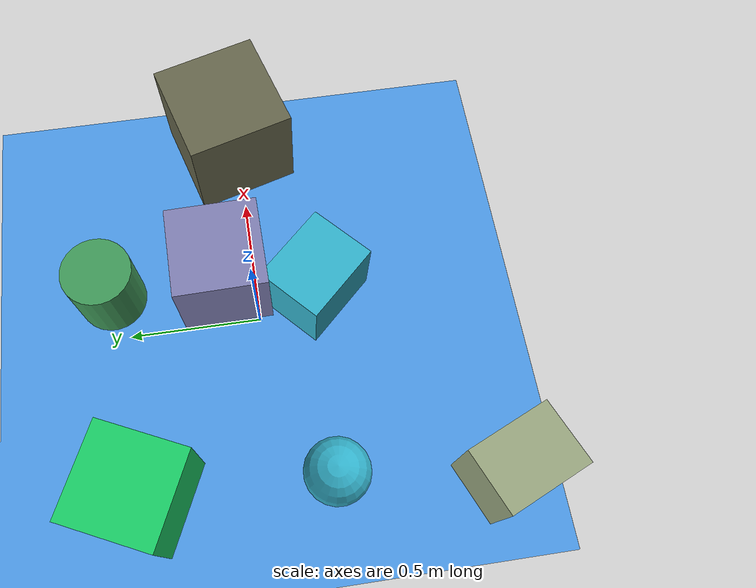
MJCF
<mujoco>
   <asset>
<texture type="skybox" builtin="gradient" rgb1="0.8 0.1 0.8" rgb2="0.8 1.0 0.7" width="256" height="256"/>
<texture name="flat_0" builtin="flat" rgb1="0.2 0.7 0.8" rgb2="0.2 0.7 0.8"  width="200" height="200"/>
<texture name="flat_1" builtin="flat" rgb1="0.1 0.8 0.4" rgb2="0.1 0.8 0.4"  width="200" height="200"/>
<texture name="flat_2" builtin="flat" rgb1="0.5 0.5 0.7" rgb2="0.5 0.5 0.7"  width="200" height="200"/>
<texture name="checker_3" builtin="checker" rgb1="0.4 0.8 0.7" rgb2="0.1 0.4 0.0" width="200" height="200"/>
<texture name="flat_4" builtin="flat" rgb1="0.4 0.4 0.3" rgb2="0.4 0.4 0.3"  width="200" height="200"/>
<texture name="gradient_5" builtin="gradient" rgb1="0.3 0.5 0.4" rgb2="0.9 0.8 0.6" width="200" height="200"/>
<texture name="gradient_6" builtin="gradient" rgb1="0.4 0.9 0.6" rgb2="0.0 0.5 1.0" width="200" height="200"/><material name="flat_0_mat" reflectance="0" texture="flat_0" texuniform="true"/>
<material name="flat_1_mat" reflectance="0" texture="flat_1" texuniform="true"/>
<material name="flat_2_mat" reflectance="0" texture="flat_2" texuniform="true"/>
<material name="checker_3_mat" reflectance="0" texrepeat="10 10" texture="checker_3" texuniform="false" />
<material name="flat_4_mat" reflectance="0" texture="flat_4" texuniform="true"/>
<material name="gradient_5_mat" reflectance="0" texture="gradient_5" texuniform="true"/>
<material name="gradient_6_mat" reflectance="0" texture="gradient_6" texuniform="true"/>
   </asset>

   <worldbody>
      <light diffuse=".9 .9 .9" pos="0 0 3" dir="0 0 -1"/>
     <geom type="plane" size="1 1 0.1" rgba="0.3 0.6 0.9 1"/>
<geom type="box" pos="0.09 -0.23 0.14" size="0.13 0.16 0.14" material="flat_0_mat" euler="0 0 43" />
<geom type="box" pos="-0.6 0.49 0.17" size="0.17 0.17 0.17" material="flat_1_mat" euler="0 0 65" />
<geom type="box" pos="0.18 0.12 0.17" size="0.17 0.17 0.17" material="flat_2_mat" euler="0 0 1" />
<geom type="cylinder" pos="0.17 0.56 0.14" size="0.13 0.14 0.14" material="checker_3_mat" euler="0 0 36" />
<geom type="box" pos="0.77 0.03 0.2" size="0.2 0.2 0.2" material="flat_4_mat" euler="0 0 16" />
<geom type="box" pos="-0.7 -0.81 0.16" size="0.12 0.16 0.16" material="gradient_5_mat" euler="0 0 23" />
<geom type="sphere" pos="-0.63 -0.2 0.12" size="0.12 0.12 0.12" material="gradient_6_mat" euler="0 0 25" /><camera euler="60 0 180" fovy="60" name="camera1" pos="-0.2 -1.5 1"></camera>   </worldbody>
</mujoco>
